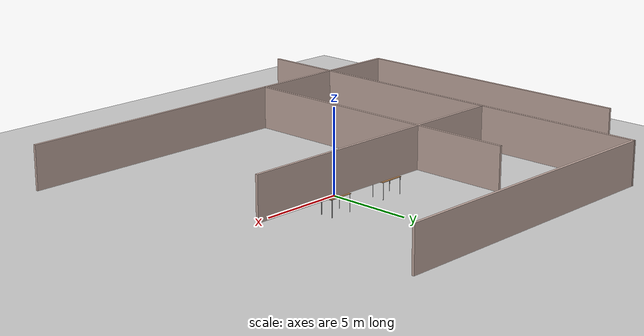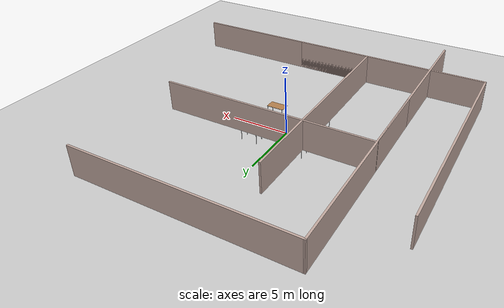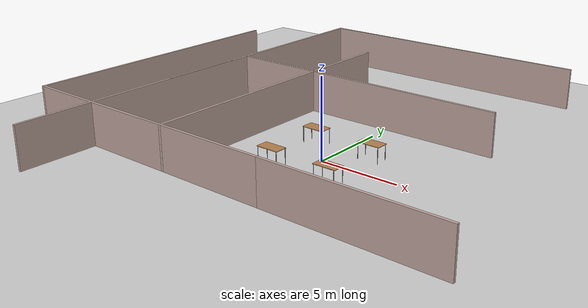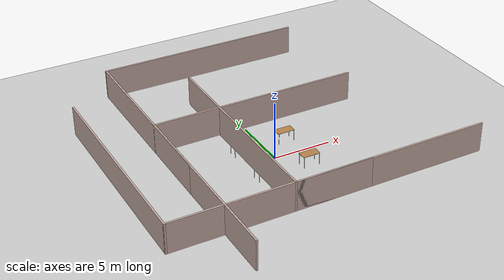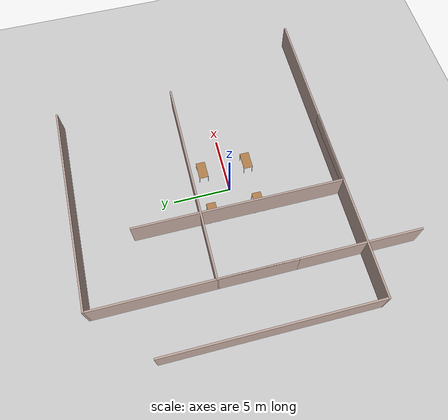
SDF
<sdf version="1.6">
 <world name="classroom">
  <include><uri>model://sun</uri></include>
  <include><uri>model://ground_plane</uri></include>
  <include>
   <uri>model://wall</uri>
   <name>wall_north</name>
   <pose>0 5 1.5 0 0 0</pose>
   <size>10 0.2 3</size>
  </include>
  <include>
   <uri>model://wall</uri>
   <name>wall_south</name>
   <pose>0 -5 1.5 0 0 0</pose>
   <size>10 0.2 3</size>
  </include>
  <include>
   <uri>model://wall</uri>
   <name>wall_east</name>
   <pose>5 0 1.5 0 0 1.5708</pose>
   <size>10 0.2 3</size>
  </include>
  <include>
   <uri>model://wall</uri>
   <name>wall_west</name>
   <pose>-5 0 1.5 0 0 1.5708</pose>
   <size>10 0.2 3</size>
  </include>
  <include><uri>model://table</uri><name>table_1</name><pose>-2 2 0 0 0 0</pose></include>
  <include><uri>model://table</uri><name>table_2</name><pose>2 2 0 0 0 0</pose></include>
  <include><uri>model://table</uri><name>table_3</name><pose>-2 -2 0 0 0 0</pose></include>
  <include><uri>model://table</uri><name>table_4</name><pose>2 -2 0 0 0 0</pose></include>
 </world>
</sdf>

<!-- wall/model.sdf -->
<sdf version='1.6'>
  <model name='wall'>
    <pose frame=''>-1.26581 1.80502 0 0 -0 0</pose>
    <link name='Wall_0'>
      <collision name='Wall_0_Collision'>
        <geometry>
          <box>
            <size>16.5 0.15 2.5</size>
          </box>
        </geometry>
        <pose frame=''>0 0 1.25 0 -0 0</pose>
      </collision>
      <visual name='Wall_0_Visual'>
        <pose frame=''>0 0 1.25 0 -0 0</pose>
        <geometry>
          <box>
            <size>16.5 0.15 2.5</size>
          </box>
        </geometry>
        <material>
          <script>
            <uri>file://media/materials/scripts/gazebo.material</uri>
            <name>Gazebo/Grey</name>
          </script>
          <ambient>0.760784 0.662745 0.627451 1</ambient>
        </material>
        <meta>
          <layer>0</layer>
        </meta>
      </visual>
      <pose frame=''>-8.71419 -1.8e-05 0 0 0 -1.5708</pose>
    </link>
    <link name='Wall_2'>
      <collision name='Wall_2_Collision'>
        <geometry>
          <box>
            <size>17.5784 0.15 2.5</size>
          </box>
        </geometry>
        <pose frame=''>0 0 1.25 0 -0 0</pose>
      </collision>
      <visual name='Wall_2_Visual'>
        <pose frame=''>0 0 1.25 0 -0 0</pose>
        <geometry>
          <box>
            <size>17.5784 0.15 2.5</size>
          </box>
        </geometry>
        <material>
          <script>
            <uri>file://media/materials/scripts/gazebo.material</uri>
            <name>Gazebo/Grey</name>
          </script>
          <ambient>0.760784 0.662745 0.627451 1</ambient>
        </material>
        <meta>
          <layer>0</layer>
        </meta>
      </visual>
      <pose frame=''>0 8.17066 0 0 0 -0.000496</pose>
    </link>
    <static>1</static>
  </model>
</sdf>

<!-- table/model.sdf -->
<sdf version="1.5">
  <model name="table">
    <static>true</static>
    <link name="link">
      <collision name="surface">
        <pose>0 0 1.0 0 0 0</pose>
        <geometry>
          <box>
            <size>1.5 0.8 0.03</size>
          </box>
        </geometry>
        <surface>
          <friction>
            <ode>
              <mu>0.6</mu>
              <mu2>0.6</mu2>
            </ode>
          </friction>
        </surface>
      </collision>
      <visual name="visual1">
        <pose>0 0 1.0 0 0 0</pose>
        <geometry>
          <box>
            <size>1.5 0.8 0.03</size>
          </box>
        </geometry>
        <material>
          <script>
            <uri>model://media/materials/scripts/gazebo.material</uri>
            <name>Gazebo/Wood</name>
          </script>
        </material>
      </visual>
      <collision name="front_left_leg">
        <pose>0.68 0.38 0.5 0 0 0</pose>
        <geometry>
          <cylinder>
            <radius>0.02</radius>
            <length>1.0</length>
          </cylinder>
        </geometry>
      </collision>
      <visual name="front_left_leg">
        <pose>0.68 0.38 0.5 0 0 0</pose>
        <geometry>
          <cylinder>
            <radius>0.02</radius>
            <length>1.0</length>
          </cylinder>
        </geometry>
        <material>
          <script>
            <uri>model://media/materials/scripts/gazebo.material</uri>
            <name>Gazebo/Grey</name>
          </script>
        </material>
      </visual>
      <collision name="front_right_leg">
        <pose>0.68 -0.38 0.5 0 0 0</pose>
        <geometry>
          <cylinder>
            <radius>0.02</radius>
            <length>1.0</length>
          </cylinder>
        </geometry>
      </collision>
      <visual name="front_right_leg">
        <pose>0.68 -0.38 0.5 0 0 0</pose>
        <geometry>
          <cylinder>
            <radius>0.02</radius>
            <length>1.0</length>
          </cylinder>
        </geometry>
        <material>
          <script>
            <uri>model://media/materials/scripts/gazebo.material</uri>
            <name>Gazebo/Grey</name>
          </script>
        </material>
      </visual>
      <collision name="back_right_leg">
        <pose>-0.68 -0.38 0.5 0 0 0</pose>
        <geometry>
          <cylinder>
            <radius>0.02</radius>
            <length>1.0</length>
          </cylinder>
        </geometry>
      </collision>
      <visual name="back_right_leg">
        <pose>-0.68 -0.38 0.5 0 0 0</pose>
        <geometry>
          <cylinder>
            <radius>0.02</radius>
            <length>1.0</length>
          </cylinder>
        </geometry>
        <material>
          <script>
            <uri>model://media/materials/scripts/gazebo.material</uri>
            <name>Gazebo/Grey</name>
          </script>
        </material>
      </visual>
      <collision name="back_left_leg">
        <pose>-0.68 0.38 0.5 0 0 0</pose>
        <geometry>
          <cylinder>
            <radius>0.02</radius>
            <length>1.0</length>
          </cylinder>
        </geometry>
      </collision>
      <visual name="back_left_leg">
        <pose>-0.68 0.38 0.5 0 0 0</pose>
        <geometry>
          <cylinder>
            <radius>0.02</radius>
            <length>1.0</length>
          </cylinder>
        </geometry>
        <material>
          <script>
            <uri>model://media/materials/scripts/gazebo.material</uri>
            <name>Gazebo/Grey</name>
          </script>
        </material>
      </visual>
    </link>
  </model>
</sdf>
